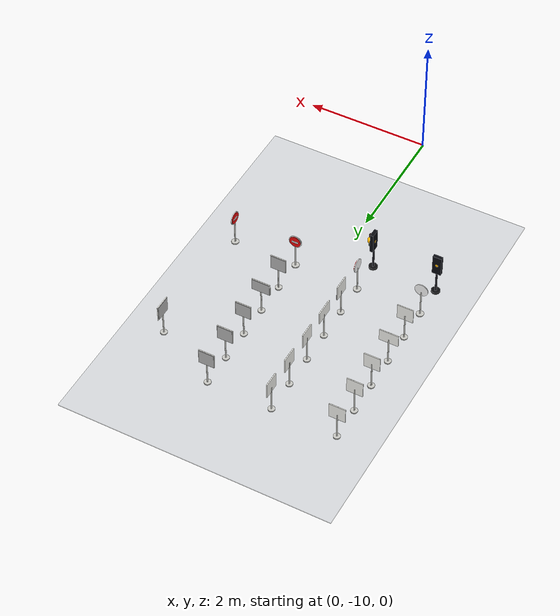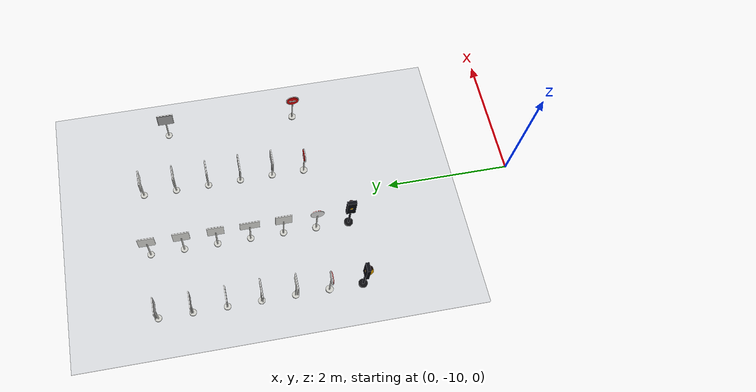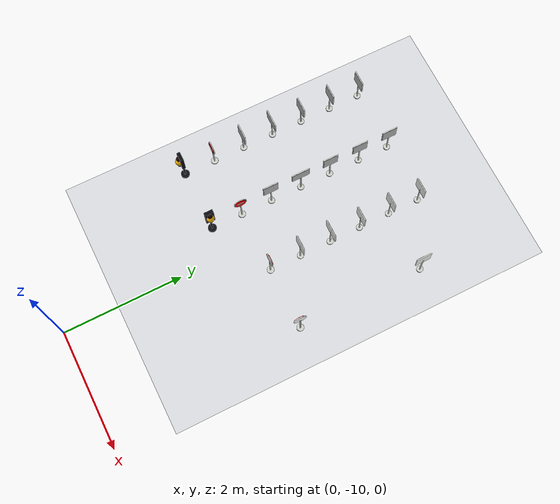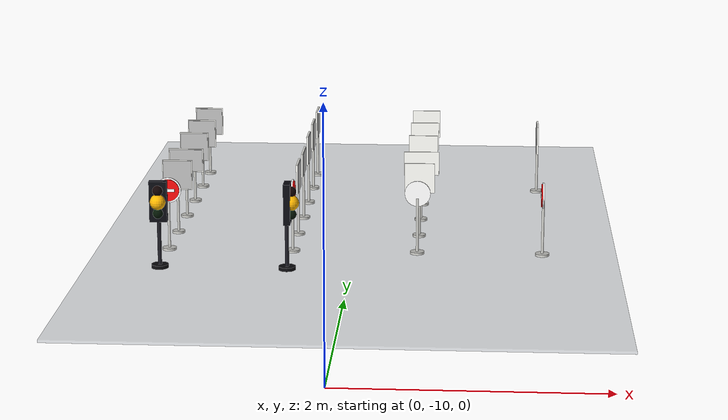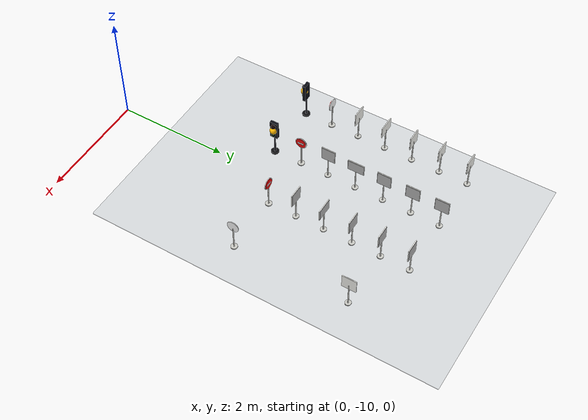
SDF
<sdf version="1.7">
 <world name="autonomous_map_3d_world">
  <model name="sign_palette_floor_outside_map">
   <static>1</static>
   <link name="palette_floor_link">
    <visual name="palette_floor_visual">
     <geometry><box><size>4.4 6.41 0.02</size></box></geometry>
     <material><ambient>0.78 0.8 0.82 0.55</ambient><diffuse>0.78 0.8 0.82 0.55</diffuse></material>
    </visual>
    <collision name="palette_floor_collision">
     <geometry><box><size>4.4 6.41 0.02</size></box></geometry>
    </collision>
   </link>
   <pose>0.000801 -5.87455 -0.02 0 -0 0</pose>
  </model>
  <model name="palette_go_straight_00_yaw_000">
   <static>1</static>
   <link name="sign_link">
    <visual name="base_visual">
     <pose>0 0 0.01 0 -0 0</pose>
     <geometry><cylinder><radius>0.055</radius><length>0.02</length></cylinder></geometry>
     <material><ambient>0.72 0.72 0.7 1</ambient><diffuse>0.78 0.78 0.76 1</diffuse></material>
    </visual>
    <visual name="pole_visual">
     <pose>0 0 0.245 0 -0 0</pose>
     <geometry><cylinder><radius>0.011</radius><length>0.47</length></cylinder></geometry>
     <material><ambient>0.72 0.72 0.7 1</ambient><diffuse>0.82 0.82 0.8 1</diffuse></material>
    </visual>
    <visual name="back_plate_visual">
     <pose>0 0 0.52 0 -0 0</pose>
     <geometry><box><size>0.26 0.014 0.26</size></box></geometry>
     <material><ambient>0.96 0.96 0.94 1</ambient><diffuse>0.98 0.98 0.96 1</diffuse></material>
    </visual>
    <visual name="sign_face_visual">
     <pose>0 -0.011 0.52 0 -0 0</pose>
     <geometry><box><size>0.246 0.004 0.246</size></box></geometry>
     <material>
      <script>
       <uri>model://road_sign_go_straight/materials/scripts</uri>
       <uri>model://road_sign_go_straight/materials/textures</uri>
       <name>RoadSign/GoStraight</name>
      </script>
     </material>
    </visual>
   </link>
   <pose>-1.575 -4.03 0 0 -0 0</pose>
  </model>
  <model name="palette_go_straight_01_yaw_090">
   <static>1</static>
   <link name="sign_link">
    <visual name="base_visual">
     <pose>0 0 0.01 0 -0 0</pose>
     <geometry><cylinder><radius>0.055</radius><length>0.02</length></cylinder></geometry>
     <material><ambient>0.72 0.72 0.7 1</ambient><diffuse>0.78 0.78 0.76 1</diffuse></material>
    </visual>
    <visual name="pole_visual">
     <pose>0 0 0.245 0 -0 0</pose>
     <geometry><cylinder><radius>0.011</radius><length>0.47</length></cylinder></geometry>
     <material><ambient>0.72 0.72 0.7 1</ambient><diffuse>0.82 0.82 0.8 1</diffuse></material>
    </visual>
    <visual name="back_plate_visual">
     <pose>0 0 0.52 0 -0 0</pose>
     <geometry><box><size>0.26 0.014 0.26</size></box></geometry>
     <material><ambient>0.96 0.96 0.94 1</ambient><diffuse>0.98 0.98 0.96 1</diffuse></material>
    </visual>
    <visual name="sign_face_visual">
     <pose>0 -0.011 0.52 0 -0 0</pose>
     <geometry><box><size>0.246 0.004 0.246</size></box></geometry>
     <material>
      <script>
       <uri>model://road_sign_go_straight/materials/scripts</uri>
       <uri>model://road_sign_go_straight/materials/textures</uri>
       <name>RoadSign/GoStraight</name>
      </script>
     </material>
    </visual>
   </link>
   <pose>-0.525 -4.03 0 0 -0 1.5708</pose>
  </model>
  <model name="palette_go_straight_02_yaw_180">
   <static>1</static>
   <link name="sign_link">
    <visual name="base_visual">
     <pose>0 0 0.01 0 -0 0</pose>
     <geometry><cylinder><radius>0.055</radius><length>0.02</length></cylinder></geometry>
     <material><ambient>0.72 0.72 0.7 1</ambient><diffuse>0.78 0.78 0.76 1</diffuse></material>
    </visual>
    <visual name="pole_visual">
     <pose>0 0 0.245 0 -0 0</pose>
     <geometry><cylinder><radius>0.011</radius><length>0.47</length></cylinder></geometry>
     <material><ambient>0.72 0.72 0.7 1</ambient><diffuse>0.82 0.82 0.8 1</diffuse></material>
    </visual>
    <visual name="back_plate_visual">
     <pose>0 0 0.52 0 -0 0</pose>
     <geometry><box><size>0.26 0.014 0.26</size></box></geometry>
     <material><ambient>0.96 0.96 0.94 1</ambient><diffuse>0.98 0.98 0.96 1</diffuse></material>
    </visual>
    <visual name="sign_face_visual">
     <pose>0 -0.011 0.52 0 -0 0</pose>
     <geometry><box><size>0.246 0.004 0.246</size></box></geometry>
     <material>
      <script>
       <uri>model://road_sign_go_straight/materials/scripts</uri>
       <uri>model://road_sign_go_straight/materials/textures</uri>
       <name>RoadSign/GoStraight</name>
      </script>
     </material>
    </visual>
   </link>
   <pose>0.525 -4.03 0 0 -0 -3.14159</pose>
  </model>
  <model name="palette_turn_left_00_yaw_000">
   <static>1</static>
   <link name="sign_link">
    <visual name="base_visual">
     <pose>0 0 0.01 0 -0 0</pose>
     <geometry><cylinder><radius>0.055</radius><length>0.02</length></cylinder></geometry>
     <material><ambient>0.72 0.72 0.7 1</ambient><diffuse>0.78 0.78 0.76 1</diffuse></material>
    </visual>
    <visual name="pole_visual">
     <pose>0 0 0.245 0 -0 0</pose>
     <geometry><cylinder><radius>0.011</radius><length>0.47</length></cylinder></geometry>
     <material><ambient>0.72 0.72 0.7 1</ambient><diffuse>0.82 0.82 0.8 1</diffuse></material>
    </visual>
    <visual name="back_plate_visual">
     <pose>0 0 0.52 0 -0 0</pose>
     <geometry><box><size>0.26 0.014 0.26</size></box></geometry>
     <material><ambient>0.96 0.96 0.94 1</ambient><diffuse>0.98 0.98 0.96 1</diffuse></material>
    </visual>
    <visual name="sign_face_visual">
     <pose>0 -0.011 0.52 0 -0 0</pose>
     <geometry><box><size>0.246 0.004 0.246</size></box></geometry>
     <material>
      <script>
       <uri>model://road_sign_turn_left/materials/scripts</uri>
       <uri>model://road_sign_turn_left/materials/textures</uri>
       <name>RoadSign/TurnLeft</name>
      </script>
     </material>
    </visual>
   </link>
   <pose>-1.575 -4.56 0 0 -0 0</pose>
  </model>
  <model name="palette_turn_left_01_yaw_090">
   <static>1</static>
   <link name="sign_link">
    <visual name="base_visual">
     <pose>0 0 0.01 0 -0 0</pose>
     <geometry><cylinder><radius>0.055</radius><length>0.02</length></cylinder></geometry>
     <material><ambient>0.72 0.72 0.7 1</ambient><diffuse>0.78 0.78 0.76 1</diffuse></material>
    </visual>
    <visual name="pole_visual">
     <pose>0 0 0.245 0 -0 0</pose>
     <geometry><cylinder><radius>0.011</radius><length>0.47</length></cylinder></geometry>
     <material><ambient>0.72 0.72 0.7 1</ambient><diffuse>0.82 0.82 0.8 1</diffuse></material>
    </visual>
    <visual name="back_plate_visual">
     <pose>0 0 0.52 0 -0 0</pose>
     <geometry><box><size>0.26 0.014 0.26</size></box></geometry>
     <material><ambient>0.96 0.96 0.94 1</ambient><diffuse>0.98 0.98 0.96 1</diffuse></material>
    </visual>
    <visual name="sign_face_visual">
     <pose>0 -0.011 0.52 0 -0 0</pose>
     <geometry><box><size>0.246 0.004 0.246</size></box></geometry>
     <material>
      <script>
       <uri>model://road_sign_turn_left/materials/scripts</uri>
       <uri>model://road_sign_turn_left/materials/textures</uri>
       <name>RoadSign/TurnLeft</name>
      </script>
     </material>
    </visual>
   </link>
   <pose>-0.525 -4.56 0 0 -0 1.5708</pose>
  </model>
  <model name="palette_turn_left_02_yaw_180">
   <static>1</static>
   <link name="sign_link">
    <visual name="base_visual">
     <pose>0 0 0.01 0 -0 0</pose>
     <geometry><cylinder><radius>0.055</radius><length>0.02</length></cylinder></geometry>
     <material><ambient>0.72 0.72 0.7 1</ambient><diffuse>0.78 0.78 0.76 1</diffuse></material>
    </visual>
    <visual name="pole_visual">
     <pose>0 0 0.245 0 -0 0</pose>
     <geometry><cylinder><radius>0.011</radius><length>0.47</length></cylinder></geometry>
     <material><ambient>0.72 0.72 0.7 1</ambient><diffuse>0.82 0.82 0.8 1</diffuse></material>
    </visual>
    <visual name="back_plate_visual">
     <pose>0 0 0.52 0 -0 0</pose>
     <geometry><box><size>0.26 0.014 0.26</size></box></geometry>
     <material><ambient>0.96 0.96 0.94 1</ambient><diffuse>0.98 0.98 0.96 1</diffuse></material>
    </visual>
    <visual name="sign_face_visual">
     <pose>0 -0.011 0.52 0 -0 0</pose>
     <geometry><box><size>0.246 0.004 0.246</size></box></geometry>
     <material>
      <script>
       <uri>model://road_sign_turn_left/materials/scripts</uri>
       <uri>model://road_sign_turn_left/materials/textures</uri>
       <name>RoadSign/TurnLeft</name>
      </script>
     </material>
    </visual>
   </link>
   <pose>0.525 -4.56 0 0 -0 -3.14159</pose>
  </model>
  <model name="palette_turn_left_03_yaw_270">
   <static>1</static>
   <link name="sign_link">
    <visual name="base_visual">
     <pose>0 0 0.01 0 -0 0</pose>
     <geometry><cylinder><radius>0.055</radius><length>0.02</length></cylinder></geometry>
     <material><ambient>0.72 0.72 0.7 1</ambient><diffuse>0.78 0.78 0.76 1</diffuse></material>
    </visual>
    <visual name="pole_visual">
     <pose>0 0 0.245 0 -0 0</pose>
     <geometry><cylinder><radius>0.011</radius><length>0.47</length></cylinder></geometry>
     <material><ambient>0.72 0.72 0.7 1</ambient><diffuse>0.82 0.82 0.8 1</diffuse></material>
    </visual>
    <visual name="back_plate_visual">
     <pose>0 0 0.52 0 -0 0</pose>
     <geometry><box><size>0.26 0.014 0.26</size></box></geometry>
     <material><ambient>0.96 0.96 0.94 1</ambient><diffuse>0.98 0.98 0.96 1</diffuse></material>
    </visual>
    <visual name="sign_face_visual">
     <pose>0 -0.011 0.52 0 -0 0</pose>
     <geometry><box><size>0.246 0.004 0.246</size></box></geometry>
     <material>
      <script>
       <uri>model://road_sign_turn_left/materials/scripts</uri>
       <uri>model://road_sign_turn_left/materials/textures</uri>
       <name>RoadSign/TurnLeft</name>
      </script>
     </material>
    </visual>
   </link>
   <pose>1.575 -4.56 0 0 0 -1.5708</pose>
  </model>
  <model name="palette_turn_right_00_yaw_000">
   <static>1</static>
   <link name="sign_link">
    <visual name="base_visual">
     <pose>0 0 0.01 0 -0 0</pose>
     <geometry><cylinder><radius>0.055</radius><length>0.02</length></cylinder></geometry>
     <material><ambient>0.72 0.72 0.7 1</ambient><diffuse>0.78 0.78 0.76 1</diffuse></material>
    </visual>
    <visual name="pole_visual">
     <pose>0 0 0.245 0 -0 0</pose>
     <geometry><cylinder><radius>0.011</radius><length>0.47</length></cylinder></geometry>
     <material><ambient>0.72 0.72 0.7 1</ambient><diffuse>0.82 0.82 0.8 1</diffuse></material>
    </visual>
    <visual name="back_plate_visual">
     <pose>0 0 0.52 0 -0 0</pose>
     <geometry><box><size>0.26 0.014 0.26</size></box></geometry>
     <material><ambient>0.96 0.96 0.94 1</ambient><diffuse>0.98 0.98 0.96 1</diffuse></material>
    </visual>
    <visual name="sign_face_visual">
     <pose>0 -0.011 0.52 0 -0 0</pose>
     <geometry><box><size>0.246 0.004 0.246</size></box></geometry>
     <material>
      <script>
       <uri>model://road_sign_turn_right/materials/scripts</uri>
       <uri>model://road_sign_turn_right/materials/textures</uri>
       <name>RoadSign/TurnRight</name>
      </script>
     </material>
    </visual>
   </link>
   <pose>-1.575 -5.09 0 0 -0 0</pose>
  </model>
  <model name="palette_turn_right_01_yaw_090">
   <static>1</static>
   <link name="sign_link">
    <visual name="base_visual">
     <pose>0 0 0.01 0 -0 0</pose>
     <geometry><cylinder><radius>0.055</radius><length>0.02</length></cylinder></geometry>
     <material><ambient>0.72 0.72 0.7 1</ambient><diffuse>0.78 0.78 0.76 1</diffuse></material>
    </visual>
    <visual name="pole_visual">
     <pose>0 0 0.245 0 -0 0</pose>
     <geometry><cylinder><radius>0.011</radius><length>0.47</length></cylinder></geometry>
     <material><ambient>0.72 0.72 0.7 1</ambient><diffuse>0.82 0.82 0.8 1</diffuse></material>
    </visual>
    <visual name="back_plate_visual">
     <pose>0 0 0.52 0 -0 0</pose>
     <geometry><box><size>0.26 0.014 0.26</size></box></geometry>
     <material><ambient>0.96 0.96 0.94 1</ambient><diffuse>0.98 0.98 0.96 1</diffuse></material>
    </visual>
    <visual name="sign_face_visual">
     <pose>0 -0.011 0.52 0 -0 0</pose>
     <geometry><box><size>0.246 0.004 0.246</size></box></geometry>
     <material>
      <script>
       <uri>model://road_sign_turn_right/materials/scripts</uri>
       <uri>model://road_sign_turn_right/materials/textures</uri>
       <name>RoadSign/TurnRight</name>
      </script>
     </material>
    </visual>
   </link>
   <pose>-0.525 -5.09 0 0 -0 1.5708</pose>
  </model>
  <model name="palette_turn_right_02_yaw_180">
   <static>1</static>
   <link name="sign_link">
    <visual name="base_visual">
     <pose>0 0 0.01 0 -0 0</pose>
     <geometry><cylinder><radius>0.055</radius><length>0.02</length></cylinder></geometry>
     <material><ambient>0.72 0.72 0.7 1</ambient><diffuse>0.78 0.78 0.76 1</diffuse></material>
    </visual>
    <visual name="pole_visual">
     <pose>0 0 0.245 0 -0 0</pose>
     <geometry><cylinder><radius>0.011</radius><length>0.47</length></cylinder></geometry>
     <material><ambient>0.72 0.72 0.7 1</ambient><diffuse>0.82 0.82 0.8 1</diffuse></material>
    </visual>
    <visual name="back_plate_visual">
     <pose>0 0 0.52 0 -0 0</pose>
     <geometry><box><size>0.26 0.014 0.26</size></box></geometry>
     <material><ambient>0.96 0.96 0.94 1</ambient><diffuse>0.98 0.98 0.96 1</diffuse></material>
    </visual>
    <visual name="sign_face_visual">
     <pose>0 -0.011 0.52 0 -0 0</pose>
     <geometry><box><size>0.246 0.004 0.246</size></box></geometry>
     <material>
      <script>
       <uri>model://road_sign_turn_right/materials/scripts</uri>
       <uri>model://road_sign_turn_right/materials/textures</uri>
       <name>RoadSign/TurnRight</name>
      </script>
     </material>
    </visual>
   </link>
   <pose>0.525 -5.09 0 0 -0 -3.14159</pose>
  </model>
  <model name="palette_parking_00_yaw_000">
   <static>1</static>
   <link name="sign_link">
    <visual name="base_visual">
     <pose>0 0 0.01 0 -0 0</pose>
     <geometry><cylinder><radius>0.055</radius><length>0.02</length></cylinder></geometry>
     <material><ambient>0.72 0.72 0.7 1</ambient><diffuse>0.78 0.78 0.76 1</diffuse></material>
    </visual>
    <visual name="pole_visual">
     <pose>0 0 0.245 0 -0 0</pose>
     <geometry><cylinder><radius>0.011</radius><length>0.47</length></cylinder></geometry>
     <material><ambient>0.72 0.72 0.7 1</ambient><diffuse>0.82 0.82 0.8 1</diffuse></material>
    </visual>
    <visual name="back_plate_visual">
     <pose>0 0 0.52 0 -0 0</pose>
     <geometry><box><size>0.31 0.014 0.21</size></box></geometry>
     <material><ambient>0.96 0.96 0.94 1</ambient><diffuse>0.98 0.98 0.96 1</diffuse></material>
    </visual>
    <visual name="sign_face_visual">
     <pose>0 -0.011 0.52 0 -0 0</pose>
     <geometry><box><size>0.294 0.004 0.196</size></box></geometry>
     <material>
      <script>
       <uri>model://road_sign_parking/materials/scripts</uri>
       <uri>model://road_sign_parking/materials/textures</uri>
       <name>RoadSign/Parking</name>
      </script>
     </material>
    </visual>
   </link>
   <pose>-1.575 -5.62 0 0 -0 0</pose>
  </model>
  <model name="palette_parking_01_yaw_090">
   <static>1</static>
   <link name="sign_link">
    <visual name="base_visual">
     <pose>0 0 0.01 0 -0 0</pose>
     <geometry><cylinder><radius>0.055</radius><length>0.02</length></cylinder></geometry>
     <material><ambient>0.72 0.72 0.7 1</ambient><diffuse>0.78 0.78 0.76 1</diffuse></material>
    </visual>
    <visual name="pole_visual">
     <pose>0 0 0.245 0 -0 0</pose>
     <geometry><cylinder><radius>0.011</radius><length>0.47</length></cylinder></geometry>
     <material><ambient>0.72 0.72 0.7 1</ambient><diffuse>0.82 0.82 0.8 1</diffuse></material>
    </visual>
    <visual name="back_plate_visual">
     <pose>0 0 0.52 0 -0 0</pose>
     <geometry><box><size>0.31 0.014 0.21</size></box></geometry>
     <material><ambient>0.96 0.96 0.94 1</ambient><diffuse>0.98 0.98 0.96 1</diffuse></material>
    </visual>
    <visual name="sign_face_visual">
     <pose>0 -0.011 0.52 0 -0 0</pose>
     <geometry><box><size>0.294 0.004 0.196</size></box></geometry>
     <material>
      <script>
       <uri>model://road_sign_parking/materials/scripts</uri>
       <uri>model://road_sign_parking/materials/textures</uri>
       <name>RoadSign/Parking</name>
      </script>
     </material>
    </visual>
   </link>
   <pose>-0.525 -5.62 0 0 -0 1.5708</pose>
  </model>
  <model name="palette_parking_02_yaw_180">
   <static>1</static>
   <link name="sign_link">
    <visual name="base_visual">
     <pose>0 0 0.01 0 -0 0</pose>
     <geometry><cylinder><radius>0.055</radius><length>0.02</length></cylinder></geometry>
     <material><ambient>0.72 0.72 0.7 1</ambient><diffuse>0.78 0.78 0.76 1</diffuse></material>
    </visual>
    <visual name="pole_visual">
     <pose>0 0 0.245 0 -0 0</pose>
     <geometry><cylinder><radius>0.011</radius><length>0.47</length></cylinder></geometry>
     <material><ambient>0.72 0.72 0.7 1</ambient><diffuse>0.82 0.82 0.8 1</diffuse></material>
    </visual>
    <visual name="back_plate_visual">
     <pose>0 0 0.52 0 -0 0</pose>
     <geometry><box><size>0.31 0.014 0.21</size></box></geometry>
     <material><ambient>0.96 0.96 0.94 1</ambient><diffuse>0.98 0.98 0.96 1</diffuse></material>
    </visual>
    <visual name="sign_face_visual">
     <pose>0 -0.011 0.52 0 -0 0</pose>
     <geometry><box><size>0.294 0.004 0.196</size></box></geometry>
     <material>
      <script>
       <uri>model://road_sign_parking/materials/scripts</uri>
       <uri>model://road_sign_parking/materials/textures</uri>
       <name>RoadSign/Parking</name>
      </script>
     </material>
    </visual>
   </link>
   <pose>0.525 -5.62 0 0 -0 -3.14159</pose>
  </model>
  <model name="palette_speed_limit_00_yaw_000">
   <static>1</static>
   <link name="sign_link">
    <visual name="base_visual">
     <pose>0 0 0.01 0 -0 0</pose>
     <geometry><cylinder><radius>0.055</radius><length>0.02</length></cylinder></geometry>
     <material><ambient>0.72 0.72 0.7 1</ambient><diffuse>0.78 0.78 0.76 1</diffuse></material>
    </visual>
    <visual name="pole_visual">
     <pose>0 0 0.245 0 -0 0</pose>
     <geometry><cylinder><radius>0.011</radius><length>0.47</length></cylinder></geometry>
     <material><ambient>0.72 0.72 0.7 1</ambient><diffuse>0.82 0.82 0.8 1</diffuse></material>
    </visual>
    <visual name="back_plate_visual">
     <pose>0 0 0.52 0 -0 0</pose>
     <geometry><box><size>0.26 0.014 0.26</size></box></geometry>
     <material><ambient>0.96 0.96 0.94 1</ambient><diffuse>0.98 0.98 0.96 1</diffuse></material>
    </visual>
    <visual name="sign_face_visual">
     <pose>0 -0.011 0.52 0 -0 0</pose>
     <geometry><box><size>0.246 0.004 0.246</size></box></geometry>
     <material>
      <script>
       <uri>model://road_sign_speed_limit/materials/scripts</uri>
       <uri>model://road_sign_speed_limit/materials/textures</uri>
       <name>RoadSign/SpeedLimit</name>
      </script>
     </material>
    </visual>
   </link>
   <pose>-1.575 -6.15 0 0 -0 0</pose>
  </model>
  <model name="palette_speed_limit_01_yaw_090">
   <static>1</static>
   <link name="sign_link">
    <visual name="base_visual">
     <pose>0 0 0.01 0 -0 0</pose>
     <geometry><cylinder><radius>0.055</radius><length>0.02</length></cylinder></geometry>
     <material><ambient>0.72 0.72 0.7 1</ambient><diffuse>0.78 0.78 0.76 1</diffuse></material>
    </visual>
    <visual name="pole_visual">
     <pose>0 0 0.245 0 -0 0</pose>
     <geometry><cylinder><radius>0.011</radius><length>0.47</length></cylinder></geometry>
     <material><ambient>0.72 0.72 0.7 1</ambient><diffuse>0.82 0.82 0.8 1</diffuse></material>
    </visual>
    <visual name="back_plate_visual">
     <pose>0 0 0.52 0 -0 0</pose>
     <geometry><box><size>0.26 0.014 0.26</size></box></geometry>
     <material><ambient>0.96 0.96 0.94 1</ambient><diffuse>0.98 0.98 0.96 1</diffuse></material>
    </visual>
    <visual name="sign_face_visual">
     <pose>0 -0.011 0.52 0 -0 0</pose>
     <geometry><box><size>0.246 0.004 0.246</size></box></geometry>
     <material>
      <script>
       <uri>model://road_sign_speed_limit/materials/scripts</uri>
       <uri>model://road_sign_speed_limit/materials/textures</uri>
       <name>RoadSign/SpeedLimit</name>
      </script>
     </material>
    </visual>
   </link>
   <pose>-0.525 -6.15 0 0 -0 1.5708</pose>
  </model>
  <model name="palette_speed_limit_02_yaw_180">
   <static>1</static>
   <link name="sign_link">
    <visual name="base_visual">
     <pose>0 0 0.01 0 -0 0</pose>
     <geometry><cylinder><radius>0.055</radius><length>0.02</length></cylinder></geometry>
     <material><ambient>0.72 0.72 0.7 1</ambient><diffuse>0.78 0.78 0.76 1</diffuse></material>
    </visual>
    <visual name="pole_visual">
     <pose>0 0 0.245 0 -0 0</pose>
     <geometry><cylinder><radius>0.011</radius><length>0.47</length></cylinder></geometry>
     <material><ambient>0.72 0.72 0.7 1</ambient><diffuse>0.82 0.82 0.8 1</diffuse></material>
    </visual>
    <visual name="back_plate_visual">
     <pose>0 0 0.52 0 -0 0</pose>
     <geometry><box><size>0.26 0.014 0.26</size></box></geometry>
     <material><ambient>0.96 0.96 0.94 1</ambient><diffuse>0.98 0.98 0.96 1</diffuse></material>
    </visual>
    <visual name="sign_face_visual">
     <pose>0 -0.011 0.52 0 -0 0</pose>
     <geometry><box><size>0.246 0.004 0.246</size></box></geometry>
     <material>
      <script>
       <uri>model://road_sign_speed_limit/materials/scripts</uri>
       <uri>model://road_sign_speed_limit/materials/textures</uri>
       <name>RoadSign/SpeedLimit</name>
      </script>
     </material>
    </visual>
   </link>
   <pose>0.525 -6.15 0 0 -0 -3.14159</pose>
  </model>
  <model name="palette_stop_00_yaw_000">
   <static>1</static>
   <link name="stop_sign_link">
    <visual name="base_visual">
     <pose>0 0 0.01 0 -0 0</pose>
     <geometry><cylinder><radius>0.06</radius><length>0.02</length></cylinder></geometry>
     <material><ambient>0.72 0.72 0.7 1</ambient><diffuse>0.78 0.78 0.76 1</diffuse></material>
    </visual>
    <visual name="pole_visual">
     <pose>0 0 0.245 0 -0 0</pose>
     <geometry><cylinder><radius>0.011</radius><length>0.47</length></cylinder></geometry>
     <material><ambient>0.72 0.72 0.7 1</ambient><diffuse>0.82 0.82 0.8 1</diffuse></material>
    </visual>
    <visual name="white_back_plate_visual">
     <pose>0 -0.002 0.52 1.5708 -0 0</pose>
     <geometry><cylinder><radius>0.108</radius><length>0.012</length></cylinder></geometry>
     <material><ambient>1 1 1 1</ambient><diffuse>1 1 1 1</diffuse></material>
    </visual>
    <visual name="red_plate_visual">
     <pose>0 -0.01 0.52 1.5708 -0 0</pose>
     <geometry><cylinder><radius>0.094</radius><length>0.014</length></cylinder></geometry>
     <material><ambient>0.72 0.02 0.02 1</ambient><diffuse>0.95 0.04 0.04 1</diffuse></material>
    </visual>
    <visual name="stop_bar_visual">
     <pose>0 -0.02 0.52 0 -0 0</pose>
     <geometry><box><size>0.11 0.006 0.028</size></box></geometry>
     <material><ambient>1 1 1 1</ambient><diffuse>1 1 1 1</diffuse></material>
    </visual>
   </link>
   <pose>-1.575 -6.68 0 0 -0 0</pose>
  </model>
  <model name="palette_stop_01_yaw_090">
   <static>1</static>
   <link name="stop_sign_link">
    <visual name="base_visual">
     <pose>0 0 0.01 0 -0 0</pose>
     <geometry><cylinder><radius>0.06</radius><length>0.02</length></cylinder></geometry>
     <material><ambient>0.72 0.72 0.7 1</ambient><diffuse>0.78 0.78 0.76 1</diffuse></material>
    </visual>
    <visual name="pole_visual">
     <pose>0 0 0.245 0 -0 0</pose>
     <geometry><cylinder><radius>0.011</radius><length>0.47</length></cylinder></geometry>
     <material><ambient>0.72 0.72 0.7 1</ambient><diffuse>0.82 0.82 0.8 1</diffuse></material>
    </visual>
    <visual name="white_back_plate_visual">
     <pose>0 -0.002 0.52 1.5708 -0 0</pose>
     <geometry><cylinder><radius>0.108</radius><length>0.012</length></cylinder></geometry>
     <material><ambient>1 1 1 1</ambient><diffuse>1 1 1 1</diffuse></material>
    </visual>
    <visual name="red_plate_visual">
     <pose>0 -0.01 0.52 1.5708 -0 0</pose>
     <geometry><cylinder><radius>0.094</radius><length>0.014</length></cylinder></geometry>
     <material><ambient>0.72 0.02 0.02 1</ambient><diffuse>0.95 0.04 0.04 1</diffuse></material>
    </visual>
    <visual name="stop_bar_visual">
     <pose>0 -0.02 0.52 0 -0 0</pose>
     <geometry><box><size>0.11 0.006 0.028</size></box></geometry>
     <material><ambient>1 1 1 1</ambient><diffuse>1 1 1 1</diffuse></material>
    </visual>
   </link>
   <pose>-0.525 -6.68 0 0 -0 1.5708</pose>
  </model>
  <model name="palette_stop_02_yaw_180">
   <static>1</static>
   <link name="stop_sign_link">
    <visual name="base_visual">
     <pose>0 0 0.01 0 -0 0</pose>
     <geometry><cylinder><radius>0.06</radius><length>0.02</length></cylinder></geometry>
     <material><ambient>0.72 0.72 0.7 1</ambient><diffuse>0.78 0.78 0.76 1</diffuse></material>
    </visual>
    <visual name="pole_visual">
     <pose>0 0 0.245 0 -0 0</pose>
     <geometry><cylinder><radius>0.011</radius><length>0.47</length></cylinder></geometry>
     <material><ambient>0.72 0.72 0.7 1</ambient><diffuse>0.82 0.82 0.8 1</diffuse></material>
    </visual>
    <visual name="white_back_plate_visual">
     <pose>0 -0.002 0.52 1.5708 -0 0</pose>
     <geometry><cylinder><radius>0.108</radius><length>0.012</length></cylinder></geometry>
     <material><ambient>1 1 1 1</ambient><diffuse>1 1 1 1</diffuse></material>
    </visual>
    <visual name="red_plate_visual">
     <pose>0 -0.01 0.52 1.5708 -0 0</pose>
     <geometry><cylinder><radius>0.094</radius><length>0.014</length></cylinder></geometry>
     <material><ambient>0.72 0.02 0.02 1</ambient><diffuse>0.95 0.04 0.04 1</diffuse></material>
    </visual>
    <visual name="stop_bar_visual">
     <pose>0 -0.02 0.52 0 -0 0</pose>
     <geometry><box><size>0.11 0.006 0.028</size></box></geometry>
     <material><ambient>1 1 1 1</ambient><diffuse>1 1 1 1</diffuse></material>
    </visual>
   </link>
   <pose>0.525 -6.68 0 0 -0 -3.14159</pose>
  </model>
  <model name="palette_stop_03_yaw_270">
   <static>1</static>
   <link name="stop_sign_link">
    <visual name="base_visual">
     <pose>0 0 0.01 0 -0 0</pose>
     <geometry><cylinder><radius>0.06</radius><length>0.02</length></cylinder></geometry>
     <material><ambient>0.72 0.72 0.7 1</ambient><diffuse>0.78 0.78 0.76 1</diffuse></material>
    </visual>
    <visual name="pole_visual">
     <pose>0 0 0.245 0 -0 0</pose>
     <geometry><cylinder><radius>0.011</radius><length>0.47</length></cylinder></geometry>
     <material><ambient>0.72 0.72 0.7 1</ambient><diffuse>0.82 0.82 0.8 1</diffuse></material>
    </visual>
    <visual name="white_back_plate_visual">
     <pose>0 -0.002 0.52 1.5708 -0 0</pose>
     <geometry><cylinder><radius>0.108</radius><length>0.012</length></cylinder></geometry>
     <material><ambient>1 1 1 1</ambient><diffuse>1 1 1 1</diffuse></material>
    </visual>
    <visual name="red_plate_visual">
     <pose>0 -0.01 0.52 1.5708 -0 0</pose>
     <geometry><cylinder><radius>0.094</radius><length>0.014</length></cylinder></geometry>
     <material><ambient>0.72 0.02 0.02 1</ambient><diffuse>0.95 0.04 0.04 1</diffuse></material>
    </visual>
    <visual name="stop_bar_visual">
     <pose>0 -0.02 0.52 0 -0 0</pose>
     <geometry><box><size>0.11 0.006 0.028</size></box></geometry>
     <material><ambient>1 1 1 1</ambient><diffuse>1 1 1 1</diffuse></material>
    </visual>
   </link>
   <pose>1.575 -6.68 0 0 0 -1.5708</pose>
  </model>
  <model name="palette_traffic_light_00_yaw_000">
   <static>1</static>
   <link name="traffic_light_link">
    <visual name="base_visual">
     <pose>0 0 0.015 0 -0 0</pose>
     <geometry><cylinder><radius>0.07</radius><length>0.03</length></cylinder></geometry>
     <material><ambient>0.03 0.03 0.04 1</ambient><diffuse>0.04 0.04 0.05 1</diffuse></material>
    </visual>
    <visual name="pole_visual">
     <pose>0 0 0.25 0 -0 0</pose>
     <geometry><cylinder><radius>0.016</radius><length>0.47</length></cylinder></geometry>
     <material><ambient>0.08 0.08 0.1 1</ambient><diffuse>0.1 0.1 0.13 1</diffuse></material>
    </visual>
    <visual name="housing_visual">
     <pose>0 -0.006 0.565 0 -0 0</pose>
     <geometry><box><size>0.145 0.055 0.34</size></box></geometry>
     <material><ambient>0.02 0.025 0.04 1</ambient><diffuse>0.03 0.035 0.06 1</diffuse></material>
    </visual>
    <visual name="red_lens_visual">
     <pose>0 -0.038 0.66 0 -0 0</pose>
     <geometry><sphere><radius>0.043</radius></sphere></geometry>
     <material>
      <ambient>0.035 0.002 0.002 1</ambient>
      <diffuse>0.06 0.004 0.004 1</diffuse>
      <emissive>0 0 0 1</emissive>
     </material>
    </visual>
    <visual name="yellow_lens_visual">
     <pose>0 -0.038 0.565 0 -0 0</pose>
     <geometry><sphere><radius>0.043</radius></sphere></geometry>
     <material>
      <ambient>0.035 0.025 0.002 1</ambient>
      <diffuse>0.06 0.045 0.004 1</diffuse>
      <emissive>0 0 0 1</emissive>
     </material>
    </visual>
    <visual name="green_lens_visual">
     <pose>0 -0.038 0.47 0 -0 0</pose>
     <geometry><sphere><radius>0.043</radius></sphere></geometry>
     <material>
      <ambient>0.002 0.04 0.004 1</ambient>
      <diffuse>0.004 0.078 0.01 1</diffuse>
      <emissive>0 0 0 1</emissive>
     </material>
    </visual>
   </link>
   <pose>-1.575 -7.21 0 0 -0 0</pose>
  </model>
  <model name="palette_traffic_light_01_yaw_090">
   <static>1</static>
   <link name="traffic_light_link">
    <visual name="base_visual">
     <pose>0 0 0.015 0 -0 0</pose>
     <geometry><cylinder><radius>0.07</radius><length>0.03</length></cylinder></geometry>
     <material><ambient>0.03 0.03 0.04 1</ambient><diffuse>0.04 0.04 0.05 1</diffuse></material>
    </visual>
    <visual name="pole_visual">
     <pose>0 0 0.25 0 -0 0</pose>
     <geometry><cylinder><radius>0.016</radius><length>0.47</length></cylinder></geometry>
     <material><ambient>0.08 0.08 0.1 1</ambient><diffuse>0.1 0.1 0.13 1</diffuse></material>
    </visual>
    <visual name="housing_visual">
     <pose>0 -0.006 0.565 0 -0 0</pose>
     <geometry><box><size>0.145 0.055 0.34</size></box></geometry>
     <material><ambient>0.02 0.025 0.04 1</ambient><diffuse>0.03 0.035 0.06 1</diffuse></material>
    </visual>
    <visual name="red_lens_visual">
     <pose>0 -0.038 0.66 0 -0 0</pose>
     <geometry><sphere><radius>0.043</radius></sphere></geometry>
     <material>
      <ambient>0.035 0.002 0.002 1</ambient>
      <diffuse>0.06 0.004 0.004 1</diffuse>
      <emissive>0 0 0 1</emissive>
     </material>
    </visual>
    <visual name="yellow_lens_visual">
     <pose>0 -0.038 0.565 0 -0 0</pose>
     <geometry><sphere><radius>0.043</radius></sphere></geometry>
     <material>
      <ambient>0.035 0.025 0.002 1</ambient>
      <diffuse>0.06 0.045 0.004 1</diffuse>
      <emissive>0 0 0 1</emissive>
     </material>
    </visual>
    <visual name="green_lens_visual">
     <pose>0 -0.038 0.47 0 -0 0</pose>
     <geometry><sphere><radius>0.043</radius></sphere></geometry>
     <material>
      <ambient>0.002 0.04 0.004 1</ambient>
      <diffuse>0.004 0.078 0.01 1</diffuse>
      <emissive>0 0 0 1</emissive>
     </material>
    </visual>
   </link>
   <pose>-0.525 -7.21 0 0 -0 1.5708</pose>
  </model>
  <model name="palette_traffic_light_00_yaw_000_yellow_active_lamp">
   <static>0</static>
   <link name="lamp_link">
    <gravity>0</gravity>
    <visual name="lamp_visual">
     <geometry><sphere><radius>0.065</radius></sphere></geometry>
     <material>
      <ambient>1 0.72 0 1</ambient>
      <diffuse>1 0.72 0 1</diffuse>
      <emissive>0.0313726 0.0203922 0 1</emissive>
     </material>
    </visual>
    <kinematic>1</kinematic>
    <inertial>
     <mass>1</mass>
     <inertia><ixx>1</ixx><iyy>1</iyy><izz>1</izz><ixy>0</ixy><ixz>0</ixz><iyz>0</iyz></inertia>
    </inertial>
   </link>
   <pose>-1.575 -7.248 0.565 0 -0 0</pose>
  </model>
  <model name="palette_traffic_light_01_yaw_090_yellow_active_lamp">
   <static>0</static>
   <link name="lamp_link">
    <gravity>0</gravity>
    <visual name="lamp_visual">
     <geometry><sphere><radius>0.065</radius></sphere></geometry>
     <material>
      <ambient>1 0.72 0 1</ambient>
      <diffuse>1 0.72 0 1</diffuse>
      <emissive>0.0313726 0.0203922 0 1</emissive>
     </material>
    </visual>
    <kinematic>1</kinematic>
    <inertial>
     <mass>1</mass>
     <inertia><ixx>1</ixx><iyy>1</iyy><izz>1</izz><ixy>0</ixy><ixz>0</ixz><iyz>0</iyz></inertia>
    </inertial>
   </link>
   <pose>-0.487 -7.21 0.565 0 -0 1.5708</pose>
  </model>
 </world>
</sdf>
